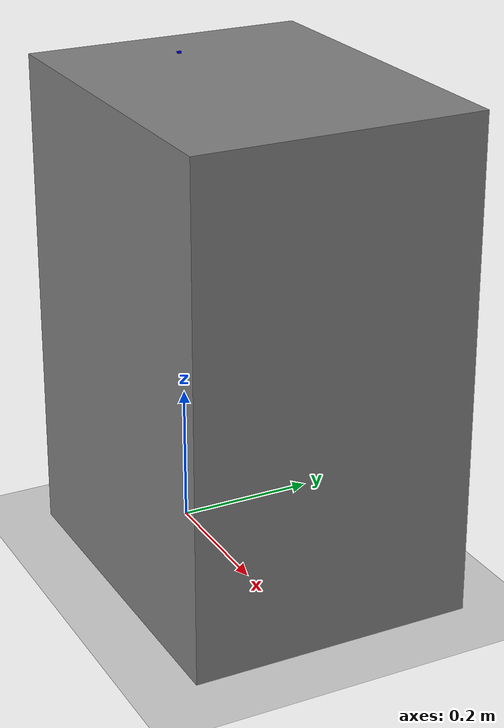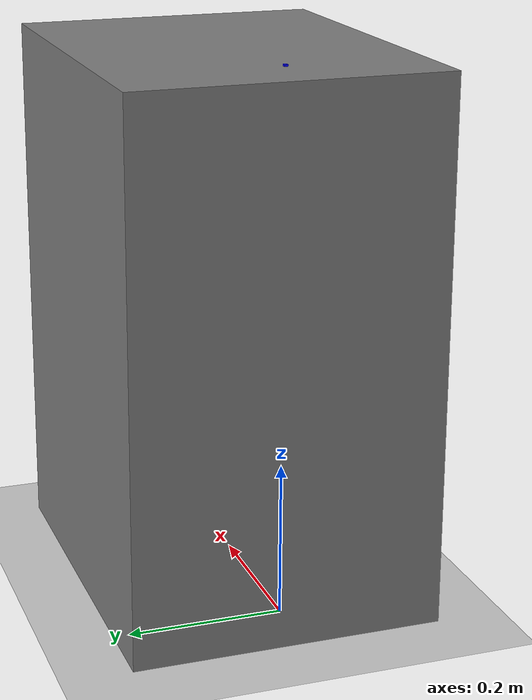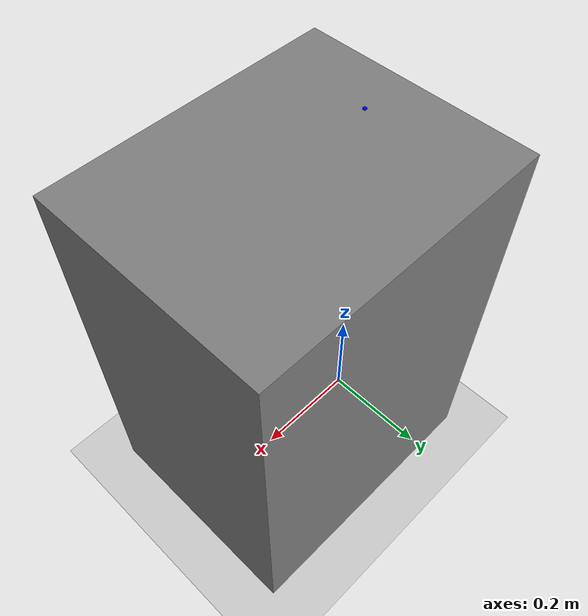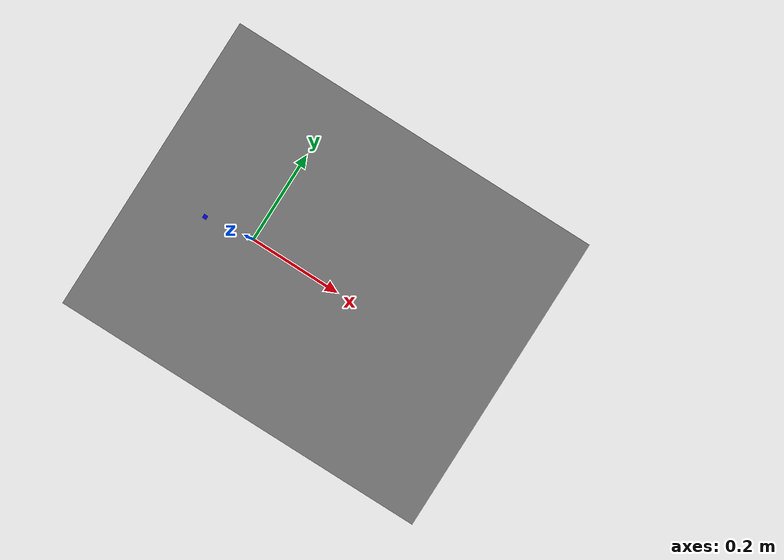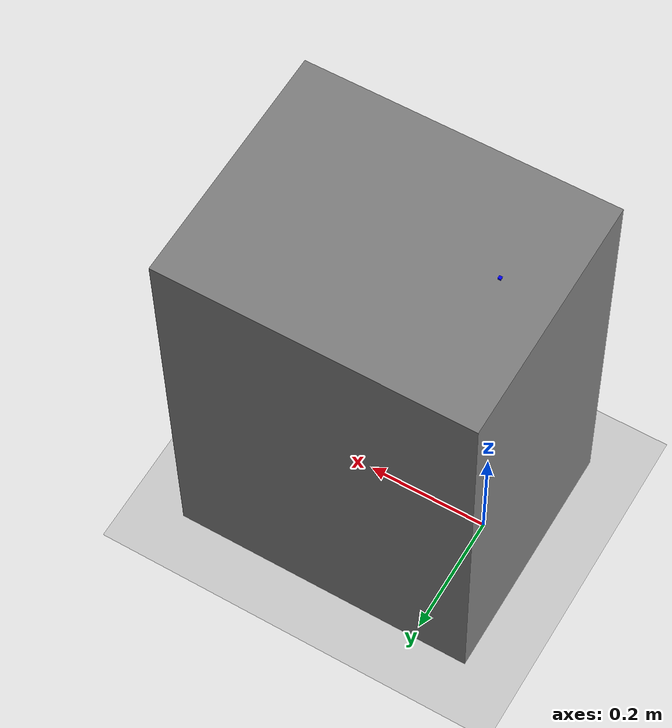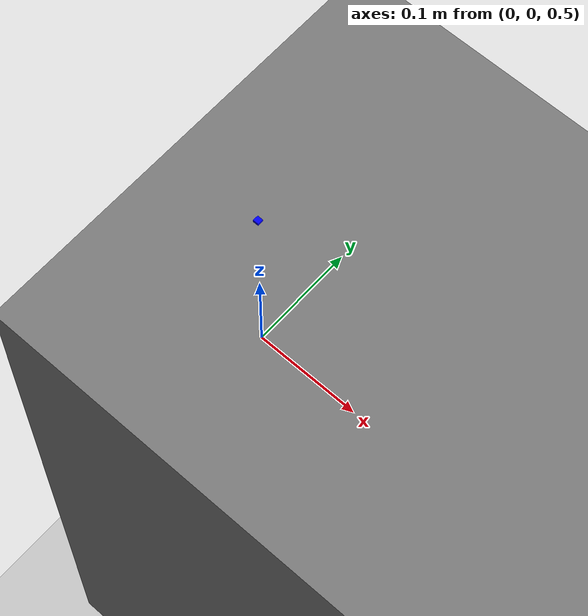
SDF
<?xml version="1.0" ?>
<sdf version="1.4">
  <world name="default">
    <include>
      <uri>model://ground_plane</uri>
    </include>

    <include>
      <uri>model://sun</uri>
    </include>

    <include>
        <uri>model://davinci_table</uri>
        <pose>0.0 0 0 0 -0 0</pose>
    </include>

    <include>
        <uri>model://5mm_cube</uri>
         <pose>0.0 0 0.7 0 0 0</pose>
    </include>

    <physics type="ode">
      <real_time_update_rate>1000.0</real_time_update_rate>
      <gravity>
	0.0 0.0 -9.81
      </gravity>
    </physics>
  </world>
</sdf>

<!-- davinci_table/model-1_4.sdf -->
<sdf version='1.4'>

  <model name="davinci_table">
    <static>true</static>
    <link name='link'>
      <pose>0.16 0.02 0.35 0 0 0</pose>
      <inertial>
        <mass>1</mass>
        <inertia>
          <ixx>1</ixx>
          <ixy>0</ixy>
          <ixz>0</ixz>
          <iyy>1</iyy>
          <iyz>0</iyz>
          <izz>1</izz>
        </inertia>
      </inertial>
     <collision name='collision'>
        <geometry>
          <box>
            <size>0.5 0.4 0.7</size>
          </box>
        </geometry>
      </collision>

      <visual name='visual'>
        <geometry>
          <box>
             <size>0.5 0.4 0.7</size>
          </box>
        </geometry>
        <material>
            <ambient>0.5 0.5 0.5 1</ambient>
            <diffuse>0.5 0.5 0.5 1</diffuse>
            <specular>0.1 0.1 0.1 1</specular>
            <emissive>0 0 0 0</emissive>
        </material>
      </visual>
    </link>
  </model>
</sdf>

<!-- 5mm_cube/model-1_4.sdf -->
<sdf version='1.4'>
  <model name="5mm_cube">
    <static>false</static>
    <link name='link'>
      <pose>0 0 0 0 0 0</pose>
      <inertial>
        <mass>0.001</mass>
        <inertia>
          <ixx>0.001</ixx>
          <ixy>0</ixy>
          <ixz>0</ixz>
          <iyy>0.001</iyy>
          <iyz>0</iyz>
          <izz>0.001</izz>
        </inertia>
      </inertial>
     <collision name='collision'>
        <geometry>
          <box>
            <size>0.005 0.005 0.005</size>
          </box>
        </geometry>
       <surface>
            <friction>
              <ode>
                <mu>1000.0</mu>
                <mu2>1000.0</mu2>
              </ode>
            </friction>
            <contact>
              <ode>
                <kp>1000000.0</kp>
                <kd>100.0</kd>
                <max_vel>1.0</max_vel>
                <min_depth>0.0005</min_depth>
              </ode>
            </contact>
          </surface>
      </collision>

      <visual name='visual'>
        <geometry>
          <box>
            <size>0.005 0.005 0.005</size>
          </box>
        </geometry>
        <material>
            <ambient>0 0 1 0</ambient>
            <diffuse>0 0 1 0</diffuse>
            <specular>0 0 1 0</specular>
            <emissive>0 0 1 0</emissive>
        </material>
      </visual>
    </link>
  </model>
</sdf>
